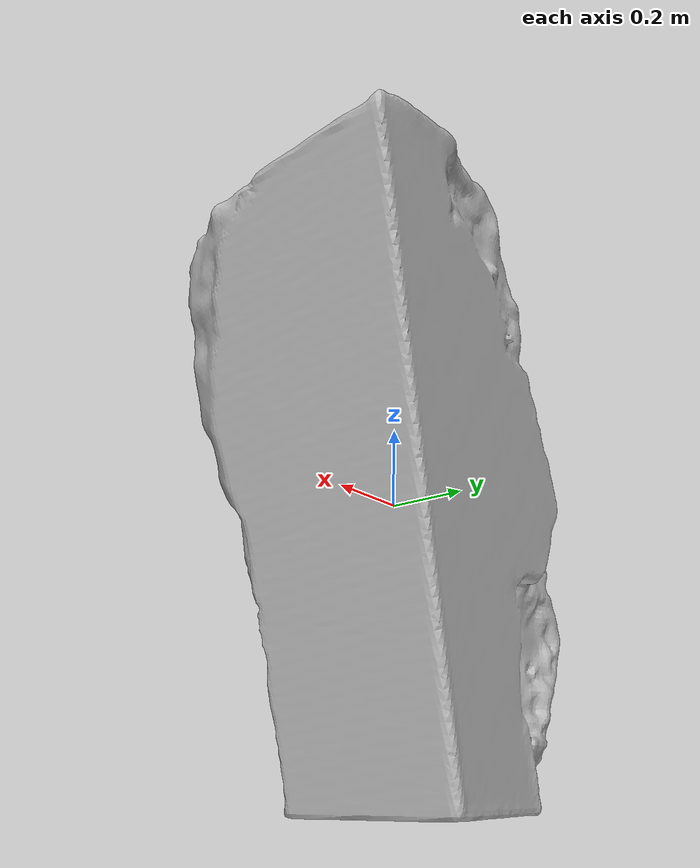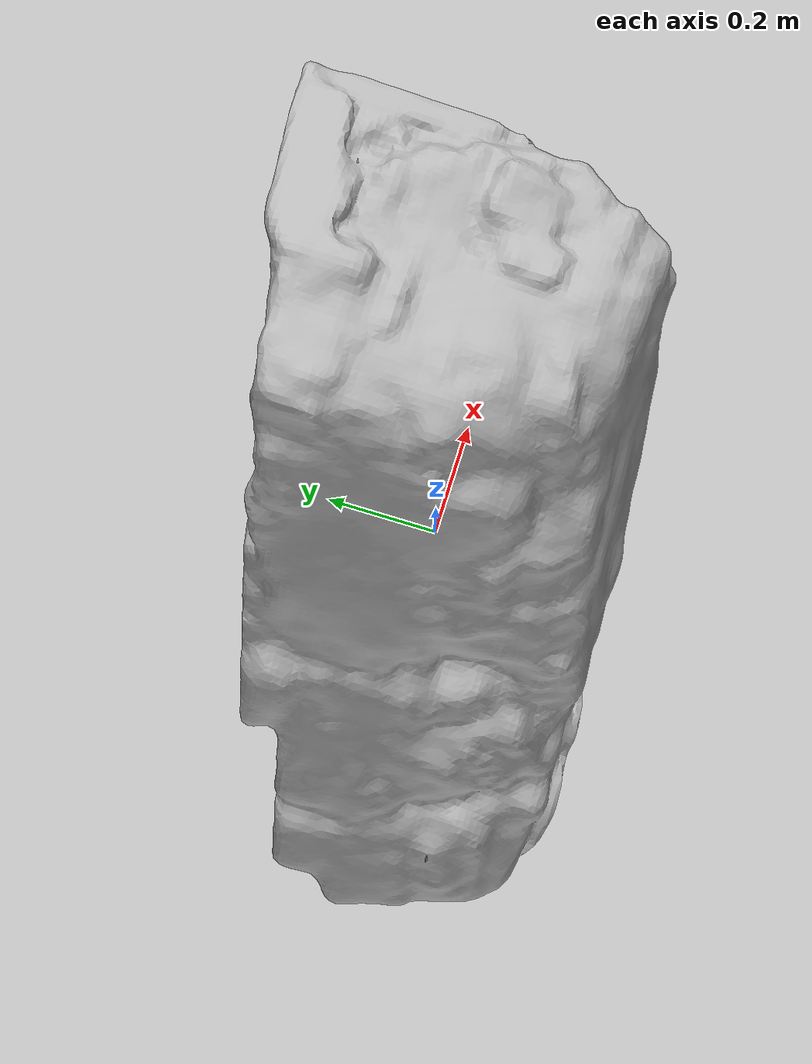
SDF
<?xml version="1.0" ?>
<sdf version="1.5">
  <model name='double_rock_pbr'>
      <pose frame=''>0 0 0 0 0 0</pose>
      <link name='body'>
        <visual name='visual'>
          <geometry>
            <mesh>
              <uri>model://double_rock_pbr/double_rock_pbr.dae</uri>
            </mesh>
          </geometry>
        </visual>
        <collision name='collision'>
          <geometry>
            <mesh>
              <uri>model://double_rock_pbr/double_rock_pbr.dae</uri>
            </mesh>
          </geometry>
          <max_contacts>10</max_contacts>
          <surface>
				<friction>
				  <ode>
					<mu>0.6</mu>
					<mu2>0.6</mu2>
				  </ode>
				  <bullet>
					<friction>0.60</friction>
					<friction2>0.60</friction2>
					<rolling_friction>0.6</rolling_friction>
				  </bullet>
				</friction>
				<contact>
					<ode>
						<min_depth>0.001</min_depth>
					</ode>
				</contact>
				<bounce>
            		<restitution_coefficient>0.9</restitution_coefficient>
            		<threshold>0.1</threshold>
          		</bounce>
			</surface>
        </collision>
        <inertial>
          <mass>1437.596</mass>
          <pose frame=''>0 0 0 0 0 0</pose>
          <inertia>
            <ixx>260.473</ixx>
            <ixy>-12.88</ixy>
            <ixz>-83.689</ixz>
            <iyy>313.424</iyy>
            <iyz>-26.81</iyz>
            <izz>134.045</izz>
          </inertia>
        </inertial>
        <self_collide>0</self_collide>
        <enable_wind>0</enable_wind>
        <kinematic>0</kinematic>
      </link>
    </model>
</sdf>
